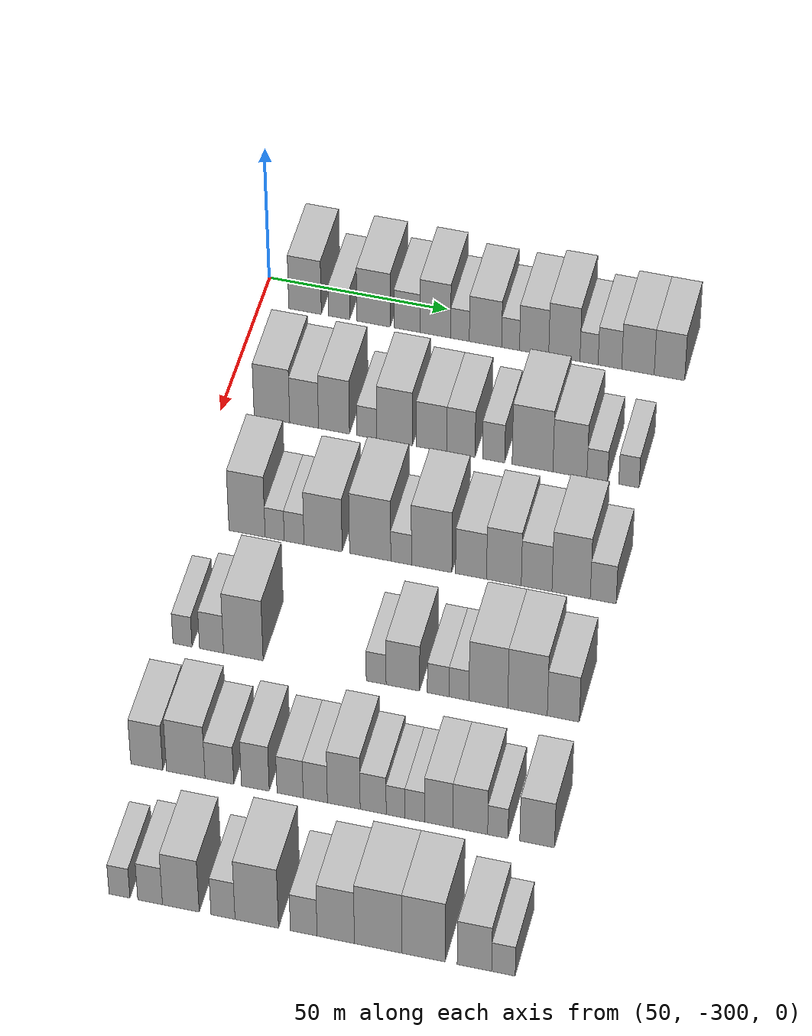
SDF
<sdf version="1.6">
 <world name="default">
  <model name="building_35">
   <static>1</static>
   <pose>50.0000 -287.3122 0 0.000000 0.000000 0.000000</pose>
   <link name="link">
    <pose>0 0 10.50 0 0 0</pose>
    <collision name="collision"><geometry><box><size>20.0000 9.1552 21.0000</size></box></geometry></collision>
    <visual name="visual">
     <cast_shadows>0</cast_shadows>
     <geometry><box><size>20.0000 9.1552 21.0000</size></box></geometry>
     <material>
      <script>
       <uri>model://HANNAS_wall/materials/scripts</uri>
       <uri>model://HANNAS_wall/materials/textures</uri>
       <name>vrc/HANNAS_wall</name>
      </script>
     </material>
    </visual>
   </link>
  </model>
  <model name="building_36">
   <static>1</static>
   <pose>50.0000 -277.7473 0 0.000000 0.000000 0.000000</pose>
   <link name="link">
    <pose>0 0 6.00 0 0 0</pose>
    <collision name="collision"><geometry><box><size>20.0000 5.9745 12.0000</size></box></geometry></collision>
    <visual name="visual">
     <cast_shadows>0</cast_shadows>
     <geometry><box><size>20.0000 5.9745 12.0000</size></box></geometry>
     <material>
      <script>
       <uri>model://HANNAS_wall/materials/scripts</uri>
       <uri>model://HANNAS_wall/materials/textures</uri>
       <name>vrc/HANNAS_wall</name>
      </script>
     </material>
    </visual>
   </link>
  </model>
  <model name="building_37">
   <static>1</static>
   <pose>50.0000 -268.0813 0 0.000000 0.000000 0.000000</pose>
   <link name="link">
    <pose>0 0 10.50 0 0 0</pose>
    <collision name="collision"><geometry><box><size>20.0000 9.3576 21.0000</size></box></geometry></collision>
    <visual name="visual">
     <cast_shadows>0</cast_shadows>
     <geometry><box><size>20.0000 9.3576 21.0000</size></box></geometry>
     <material>
      <script>
       <uri>model://HANNAS_wall/materials/scripts</uri>
       <uri>model://HANNAS_wall/materials/textures</uri>
       <name>vrc/HANNAS_wall</name>
      </script>
     </material>
    </visual>
   </link>
  </model>
  <model name="building_38">
   <static>1</static>
   <pose>50.0000 -258.7891 0 0.000000 0.000000 0.000000</pose>
   <link name="link">
    <pose>0 0 7.50 0 0 0</pose>
    <collision name="collision"><geometry><box><size>20.0000 7.2269 15.0000</size></box></geometry></collision>
    <visual name="visual">
     <cast_shadows>0</cast_shadows>
     <geometry><box><size>20.0000 7.2269 15.0000</size></box></geometry>
     <material>
      <script>
       <uri>model://HANNAS_wall/materials/scripts</uri>
       <uri>model://HANNAS_wall/materials/textures</uri>
       <name>vrc/HANNAS_wall</name>
      </script>
     </material>
    </visual>
   </link>
  </model>
  <model name="building_39">
   <static>1</static>
   <pose>50.0000 -250.8668 0 0.000000 0.000000 0.000000</pose>
   <link name="link">
    <pose>0 0 10.50 0 0 0</pose>
    <collision name="collision"><geometry><box><size>20.0000 8.6175 21.0000</size></box></geometry></collision>
    <visual name="visual">
     <cast_shadows>0</cast_shadows>
     <geometry><box><size>20.0000 8.6175 21.0000</size></box></geometry>
     <material>
      <script>
       <uri>model://HANNAS_wall/materials/scripts</uri>
       <uri>model://HANNAS_wall/materials/textures</uri>
       <name>vrc/HANNAS_wall</name>
      </script>
     </material>
    </visual>
   </link>
  </model>
  <model name="building_40">
   <static>1</static>
   <pose>50.0000 -243.9789 0 0.000000 0.000000 0.000000</pose>
   <link name="link">
    <pose>0 0 6.00 0 0 0</pose>
    <collision name="collision"><geometry><box><size>20.0000 5.1584 12.0000</size></box></geometry></collision>
    <visual name="visual">
     <cast_shadows>0</cast_shadows>
     <geometry><box><size>20.0000 5.1584 12.0000</size></box></geometry>
     <material>
      <script>
       <uri>model://HANNAS_wall/materials/scripts</uri>
       <uri>model://HANNAS_wall/materials/textures</uri>
       <name>vrc/HANNAS_wall</name>
      </script>
     </material>
    </visual>
   </link>
  </model>
  <model name="building_41">
   <static>1</static>
   <pose>50.0000 -236.9094 0 0.000000 0.000000 0.000000</pose>
   <link name="link">
    <pose>0 0 9.00 0 0 0</pose>
    <collision name="collision"><geometry><box><size>20.0000 8.9805 18.0000</size></box></geometry></collision>
    <visual name="visual">
     <cast_shadows>0</cast_shadows>
     <geometry><box><size>20.0000 8.9805 18.0000</size></box></geometry>
     <material>
      <script>
       <uri>model://HANNAS_wall/materials/scripts</uri>
       <uri>model://HANNAS_wall/materials/textures</uri>
       <name>vrc/HANNAS_wall</name>
      </script>
     </material>
    </visual>
   </link>
  </model>
  <model name="building_42">
   <static>1</static>
   <pose>50.0000 -229.9395 0 0.000000 0.000000 0.000000</pose>
   <link name="link">
    <pose>0 0 6.00 0 0 0</pose>
    <collision name="collision"><geometry><box><size>20.0000 4.9593 12.0000</size></box></geometry></collision>
    <visual name="visual">
     <cast_shadows>0</cast_shadows>
     <geometry><box><size>20.0000 4.9593 12.0000</size></box></geometry>
     <material>
      <script>
       <uri>model://HANNAS_wall/materials/scripts</uri>
       <uri>model://HANNAS_wall/materials/textures</uri>
       <name>vrc/HANNAS_wall</name>
      </script>
     </material>
    </visual>
   </link>
  </model>
  <model name="building_43">
   <static>1</static>
   <pose>50.0000 -223.4238 0 0.000000 0.000000 0.000000</pose>
   <link name="link">
    <pose>0 0 9.00 0 0 0</pose>
    <collision name="collision"><geometry><box><size>20.0000 8.0720 18.0000</size></box></geometry></collision>
    <visual name="visual">
     <cast_shadows>0</cast_shadows>
     <geometry><box><size>20.0000 8.0720 18.0000</size></box></geometry>
     <material>
      <script>
       <uri>model://HANNAS_wall/materials/scripts</uri>
       <uri>model://HANNAS_wall/materials/textures</uri>
       <name>vrc/HANNAS_wall</name>
      </script>
     </material>
    </visual>
   </link>
  </model>
  <model name="building_44">
   <static>1</static>
   <pose>50.0000 -215.0772 0 0.000000 0.000000 0.000000</pose>
   <link name="link">
    <pose>0 0 10.50 0 0 0</pose>
    <collision name="collision"><geometry><box><size>20.0000 8.6213 21.0000</size></box></geometry></collision>
    <visual name="visual">
     <cast_shadows>0</cast_shadows>
     <geometry><box><size>20.0000 8.6213 21.0000</size></box></geometry>
     <material>
      <script>
       <uri>model://HANNAS_wall/materials/scripts</uri>
       <uri>model://HANNAS_wall/materials/textures</uri>
       <name>vrc/HANNAS_wall</name>
      </script>
     </material>
    </visual>
   </link>
  </model>
  <model name="building_45">
   <static>1</static>
   <pose>50.0000 -208.2538 0 0.000000 0.000000 0.000000</pose>
   <link name="link">
    <pose>0 0 6.00 0 0 0</pose>
    <collision name="collision"><geometry><box><size>20.0000 5.0254 12.0000</size></box></geometry></collision>
    <visual name="visual">
     <cast_shadows>0</cast_shadows>
     <geometry><box><size>20.0000 5.0254 12.0000</size></box></geometry>
     <material>
      <script>
       <uri>model://HANNAS_wall/materials/scripts</uri>
       <uri>model://HANNAS_wall/materials/textures</uri>
       <name>vrc/HANNAS_wall</name>
      </script>
     </material>
    </visual>
   </link>
  </model>
  <model name="building_46">
   <static>1</static>
   <pose>50.0000 -202.4890 0 0.000000 0.000000 0.000000</pose>
   <link name="link">
    <pose>0 0 7.50 0 0 0</pose>
    <collision name="collision"><geometry><box><size>20.0000 6.5043 15.0000</size></box></geometry></collision>
    <visual name="visual">
     <cast_shadows>0</cast_shadows>
     <geometry><box><size>20.0000 6.5043 15.0000</size></box></geometry>
     <material>
      <script>
       <uri>model://HANNAS_wall/materials/scripts</uri>
       <uri>model://HANNAS_wall/materials/textures</uri>
       <name>vrc/HANNAS_wall</name>
      </script>
     </material>
    </visual>
   </link>
  </model>
  <model name="building_47">
   <static>1</static>
   <pose>50.0000 -194.7680 0 0.000000 0.000000 0.000000</pose>
   <link name="link">
    <pose>0 0 9.00 0 0 0</pose>
    <collision name="collision"><geometry><box><size>20.0000 8.9376 18.0000</size></box></geometry></collision>
    <visual name="visual">
     <cast_shadows>0</cast_shadows>
     <geometry><box><size>20.0000 8.9376 18.0000</size></box></geometry>
     <material>
      <script>
       <uri>model://HANNAS_wall/materials/scripts</uri>
       <uri>model://HANNAS_wall/materials/textures</uri>
       <name>vrc/HANNAS_wall</name>
      </script>
     </material>
    </visual>
   </link>
  </model>
  <model name="building_48">
   <static>1</static>
   <pose>50.0000 -186.1059 0 0.000000 0.000000 0.000000</pose>
   <link name="link">
    <pose>0 0 9.00 0 0 0</pose>
    <collision name="collision"><geometry><box><size>20.0000 8.3866 18.0000</size></box></geometry></collision>
    <visual name="visual">
     <cast_shadows>0</cast_shadows>
     <geometry><box><size>20.0000 8.3866 18.0000</size></box></geometry>
     <material>
      <script>
       <uri>model://HANNAS_wall/materials/scripts</uri>
       <uri>model://HANNAS_wall/materials/textures</uri>
       <name>vrc/HANNAS_wall</name>
      </script>
     </material>
    </visual>
   </link>
  </model>
  <model name="building_166">
   <static>1</static>
   <pose>90.0000 -285.9485 0 0.000000 0.000000 0.000000</pose>
   <link name="link">
    <pose>0 0 10.50 0 0 0</pose>
    <collision name="collision"><geometry><box><size>20.0000 9.8351 21.0000</size></box></geometry></collision>
    <visual name="visual">
     <cast_shadows>0</cast_shadows>
     <geometry><box><size>20.0000 9.8351 21.0000</size></box></geometry>
     <material>
      <script>
       <uri>model://HANNAS_wall/materials/scripts</uri>
       <uri>model://HANNAS_wall/materials/textures</uri>
       <name>vrc/HANNAS_wall</name>
      </script>
     </material>
    </visual>
   </link>
  </model>
  <model name="building_167">
   <static>1</static>
   <pose>90.0000 -277.0634 0 0.000000 0.000000 0.000000</pose>
   <link name="link">
    <pose>0 0 9.00 0 0 0</pose>
    <collision name="collision"><geometry><box><size>20.0000 7.9351 18.0000</size></box></geometry></collision>
    <visual name="visual">
     <cast_shadows>0</cast_shadows>
     <geometry><box><size>20.0000 7.9351 18.0000</size></box></geometry>
     <material>
      <script>
       <uri>model://HANNAS_wall/materials/scripts</uri>
       <uri>model://HANNAS_wall/materials/textures</uri>
       <name>vrc/HANNAS_wall</name>
      </script>
     </material>
    </visual>
   </link>
  </model>
  <model name="building_168">
   <static>1</static>
   <pose>90.0000 -268.8476 0 0.000000 0.000000 0.000000</pose>
   <link name="link">
    <pose>0 0 10.50 0 0 0</pose>
    <collision name="collision"><geometry><box><size>20.0000 8.4964 21.0000</size></box></geometry></collision>
    <visual name="visual">
     <cast_shadows>0</cast_shadows>
     <geometry><box><size>20.0000 8.4964 21.0000</size></box></geometry>
     <material>
      <script>
       <uri>model://HANNAS_wall/materials/scripts</uri>
       <uri>model://HANNAS_wall/materials/textures</uri>
       <name>vrc/HANNAS_wall</name>
      </script>
     </material>
    </visual>
   </link>
  </model>
  <model name="building_169">
   <static>1</static>
   <pose>90.0000 -259.8656 0 0.000000 0.000000 0.000000</pose>
   <link name="link">
    <pose>0 0 6.00 0 0 0</pose>
    <collision name="collision"><geometry><box><size>20.0000 5.4676 12.0000</size></box></geometry></collision>
    <visual name="visual">
     <cast_shadows>0</cast_shadows>
     <geometry><box><size>20.0000 5.4676 12.0000</size></box></geometry>
     <material>
      <script>
       <uri>model://HANNAS_wall/materials/scripts</uri>
       <uri>model://HANNAS_wall/materials/textures</uri>
       <name>vrc/HANNAS_wall</name>
      </script>
     </material>
    </visual>
   </link>
  </model>
  <model name="building_170">
   <static>1</static>
   <pose>90.0000 -252.2213 0 0.000000 0.000000 0.000000</pose>
   <link name="link">
    <pose>0 0 10.50 0 0 0</pose>
    <collision name="collision"><geometry><box><size>20.0000 9.8212 21.0000</size></box></geometry></collision>
    <visual name="visual">
     <cast_shadows>0</cast_shadows>
     <geometry><box><size>20.0000 9.8212 21.0000</size></box></geometry>
     <material>
      <script>
       <uri>model://HANNAS_wall/materials/scripts</uri>
       <uri>model://HANNAS_wall/materials/textures</uri>
       <name>vrc/HANNAS_wall</name>
      </script>
     </material>
    </visual>
   </link>
  </model>
  <model name="building_171">
   <static>1</static>
   <pose>90.0000 -242.1165 0 0.000000 0.000000 0.000000</pose>
   <link name="link">
    <pose>0 0 9.00 0 0 0</pose>
    <collision name="collision"><geometry><box><size>20.0000 8.3883 18.0000</size></box></geometry></collision>
    <visual name="visual">
     <cast_shadows>0</cast_shadows>
     <geometry><box><size>20.0000 8.3883 18.0000</size></box></geometry>
     <material>
      <script>
       <uri>model://HANNAS_wall/materials/scripts</uri>
       <uri>model://HANNAS_wall/materials/textures</uri>
       <name>vrc/HANNAS_wall</name>
      </script>
     </material>
    </visual>
   </link>
  </model>
  <model name="building_172">
   <static>1</static>
   <pose>90.0000 -234.0797 0 0.000000 0.000000 0.000000</pose>
   <link name="link">
    <pose>0 0 9.00 0 0 0</pose>
    <collision name="collision"><geometry><box><size>20.0000 7.6854 18.0000</size></box></geometry></collision>
    <visual name="visual">
     <cast_shadows>0</cast_shadows>
     <geometry><box><size>20.0000 7.6854 18.0000</size></box></geometry>
     <material>
      <script>
       <uri>model://HANNAS_wall/materials/scripts</uri>
       <uri>model://HANNAS_wall/materials/textures</uri>
       <name>vrc/HANNAS_wall</name>
      </script>
     </material>
    </visual>
   </link>
  </model>
  <model name="building_173">
   <static>1</static>
   <pose>90.0000 -225.2042 0 0.000000 0.000000 0.000000</pose>
   <link name="link">
    <pose>0 0 7.50 0 0 0</pose>
    <collision name="collision"><geometry><box><size>20.0000 6.0655 15.0000</size></box></geometry></collision>
    <visual name="visual">
     <cast_shadows>0</cast_shadows>
     <geometry><box><size>20.0000 6.0655 15.0000</size></box></geometry>
     <material>
      <script>
       <uri>model://HANNAS_wall/materials/scripts</uri>
       <uri>model://HANNAS_wall/materials/textures</uri>
       <name>vrc/HANNAS_wall</name>
      </script>
     </material>
    </visual>
   </link>
  </model>
  <model name="building_174">
   <static>1</static>
   <pose>90.0000 -214.6395 0 0.000000 0.000000 0.000000</pose>
   <link name="link">
    <pose>0 0 12.00 0 0 0</pose>
    <collision name="collision"><geometry><box><size>20.0000 11.0639 24.0000</size></box></geometry></collision>
    <visual name="visual">
     <cast_shadows>0</cast_shadows>
     <geometry><box><size>20.0000 11.0639 24.0000</size></box></geometry>
     <material>
      <script>
       <uri>model://HANNAS_wall/materials/scripts</uri>
       <uri>model://HANNAS_wall/materials/textures</uri>
       <name>vrc/HANNAS_wall</name>
      </script>
     </material>
    </visual>
   </link>
  </model>
  <model name="building_175">
   <static>1</static>
   <pose>90.0000 -204.4975 0 0.000000 0.000000 0.000000</pose>
   <link name="link">
    <pose>0 0 10.50 0 0 0</pose>
    <collision name="collision"><geometry><box><size>20.0000 9.2202 21.0000</size></box></geometry></collision>
    <visual name="visual">
     <cast_shadows>0</cast_shadows>
     <geometry><box><size>20.0000 9.2202 21.0000</size></box></geometry>
     <material>
      <script>
       <uri>model://HANNAS_wall/materials/scripts</uri>
       <uri>model://HANNAS_wall/materials/textures</uri>
       <name>vrc/HANNAS_wall</name>
      </script>
     </material>
    </visual>
   </link>
  </model>
  <model name="building_176">
   <static>1</static>
   <pose>90.0000 -197.0859 0 0.000000 0.000000 0.000000</pose>
   <link name="link">
    <pose>0 0 6.00 0 0 0</pose>
    <collision name="collision"><geometry><box><size>20.0000 5.6028 12.0000</size></box></geometry></collision>
    <visual name="visual">
     <cast_shadows>0</cast_shadows>
     <geometry><box><size>20.0000 5.6028 12.0000</size></box></geometry>
     <material>
      <script>
       <uri>model://HANNAS_wall/materials/scripts</uri>
       <uri>model://HANNAS_wall/materials/textures</uri>
       <name>vrc/HANNAS_wall</name>
      </script>
     </material>
    </visual>
   </link>
  </model>
  <model name="building_177">
   <static>1</static>
   <pose>90.0000 -188.5389 0 0.000000 0.000000 0.000000</pose>
   <link name="link">
    <pose>0 0 6.00 0 0 0</pose>
    <collision name="collision"><geometry><box><size>20.0000 5.4913 12.0000</size></box></geometry></collision>
    <visual name="visual">
     <cast_shadows>0</cast_shadows>
     <geometry><box><size>20.0000 5.4913 12.0000</size></box></geometry>
     <material>
      <script>
       <uri>model://HANNAS_wall/materials/scripts</uri>
       <uri>model://HANNAS_wall/materials/textures</uri>
       <name>vrc/HANNAS_wall</name>
      </script>
     </material>
    </visual>
   </link>
  </model>
  <model name="building_301">
   <static>1</static>
   <pose>130.0000 -281.9947 0 0.000000 0.000000 0.000000</pose>
   <link name="link">
    <pose>0 0 12.00 0 0 0</pose>
    <collision name="collision"><geometry><box><size>20.0000 9.7970 24.0000</size></box></geometry></collision>
    <visual name="visual">
     <cast_shadows>0</cast_shadows>
     <geometry><box><size>20.0000 9.7970 24.0000</size></box></geometry>
     <material>
      <script>
       <uri>model://HANNAS_wall/materials/scripts</uri>
       <uri>model://HANNAS_wall/materials/textures</uri>
       <name>vrc/HANNAS_wall</name>
      </script>
     </material>
    </visual>
   </link>
  </model>
  <model name="building_302">
   <static>1</static>
   <pose>130.0000 -274.5153 0 0.000000 0.000000 0.000000</pose>
   <link name="link">
    <pose>0 0 6.00 0 0 0</pose>
    <collision name="collision"><geometry><box><size>20.0000 5.1618 12.0000</size></box></geometry></collision>
    <visual name="visual">
     <cast_shadows>0</cast_shadows>
     <geometry><box><size>20.0000 5.1618 12.0000</size></box></geometry>
     <material>
      <script>
       <uri>model://HANNAS_wall/materials/scripts</uri>
       <uri>model://HANNAS_wall/materials/textures</uri>
       <name>vrc/HANNAS_wall</name>
      </script>
     </material>
    </visual>
   </link>
  </model>
  <model name="building_303">
   <static>1</static>
   <pose>130.0000 -269.2646 0 0.000000 0.000000 0.000000</pose>
   <link name="link">
    <pose>0 0 6.00 0 0 0</pose>
    <collision name="collision"><geometry><box><size>20.0000 5.3396 12.0000</size></box></geometry></collision>
    <visual name="visual">
     <cast_shadows>0</cast_shadows>
     <geometry><box><size>20.0000 5.3396 12.0000</size></box></geometry>
     <material>
      <script>
       <uri>model://HANNAS_wall/materials/scripts</uri>
       <uri>model://HANNAS_wall/materials/textures</uri>
       <name>vrc/HANNAS_wall</name>
      </script>
     </material>
    </visual>
   </link>
  </model>
  <model name="building_304">
   <static>1</static>
   <pose>130.0000 -261.4586 0 0.000000 0.000000 0.000000</pose>
   <link name="link">
    <pose>0 0 10.50 0 0 0</pose>
    <collision name="collision"><geometry><box><size>20.0000 10.2723 21.0000</size></box></geometry></collision>
    <visual name="visual">
     <cast_shadows>0</cast_shadows>
     <geometry><box><size>20.0000 10.2723 21.0000</size></box></geometry>
     <material>
      <script>
       <uri>model://HANNAS_wall/materials/scripts</uri>
       <uri>model://HANNAS_wall/materials/textures</uri>
       <name>vrc/HANNAS_wall</name>
      </script>
     </material>
    </visual>
   </link>
  </model>
  <model name="building_305">
   <static>1</static>
   <pose>130.0000 -248.7860 0 0.000000 0.000000 0.000000</pose>
   <link name="link">
    <pose>0 0 12.00 0 0 0</pose>
    <collision name="collision"><geometry><box><size>20.0000 11.0729 24.0000</size></box></geometry></collision>
    <visual name="visual">
     <cast_shadows>0</cast_shadows>
     <geometry><box><size>20.0000 11.0729 24.0000</size></box></geometry>
     <material>
      <script>
       <uri>model://HANNAS_wall/materials/scripts</uri>
       <uri>model://HANNAS_wall/materials/textures</uri>
       <name>vrc/HANNAS_wall</name>
      </script>
     </material>
    </visual>
   </link>
  </model>
  <model name="building_306">
   <static>1</static>
   <pose>130.0000 -240.4891 0 0.000000 0.000000 0.000000</pose>
   <link name="link">
    <pose>0 0 6.00 0 0 0</pose>
    <collision name="collision"><geometry><box><size>20.0000 5.5208 12.0000</size></box></geometry></collision>
    <visual name="visual">
     <cast_shadows>0</cast_shadows>
     <geometry><box><size>20.0000 5.5208 12.0000</size></box></geometry>
     <material>
      <script>
       <uri>model://HANNAS_wall/materials/scripts</uri>
       <uri>model://HANNAS_wall/materials/textures</uri>
       <name>vrc/HANNAS_wall</name>
      </script>
     </material>
    </visual>
   </link>
  </model>
  <model name="building_307">
   <static>1</static>
   <pose>130.0000 -232.3187 0 0.000000 0.000000 0.000000</pose>
   <link name="link">
    <pose>0 0 12.00 0 0 0</pose>
    <collision name="collision"><geometry><box><size>20.0000 10.8200 24.0000</size></box></geometry></collision>
    <visual name="visual">
     <cast_shadows>0</cast_shadows>
     <geometry><box><size>20.0000 10.8200 24.0000</size></box></geometry>
     <material>
      <script>
       <uri>model://HANNAS_wall/materials/scripts</uri>
       <uri>model://HANNAS_wall/materials/textures</uri>
       <name>vrc/HANNAS_wall</name>
      </script>
     </material>
    </visual>
   </link>
  </model>
  <model name="building_308">
   <static>1</static>
   <pose>130.0000 -221.7755 0 0.000000 0.000000 0.000000</pose>
   <link name="link">
    <pose>0 0 9.00 0 0 0</pose>
    <collision name="collision"><geometry><box><size>20.0000 8.2665 18.0000</size></box></geometry></collision>
    <visual name="visual">
     <cast_shadows>0</cast_shadows>
     <geometry><box><size>20.0000 8.2665 18.0000</size></box></geometry>
     <material>
      <script>
       <uri>model://HANNAS_wall/materials/scripts</uri>
       <uri>model://HANNAS_wall/materials/textures</uri>
       <name>vrc/HANNAS_wall</name>
      </script>
     </material>
    </visual>
   </link>
  </model>
  <model name="building_309">
   <static>1</static>
   <pose>130.0000 -213.0189 0 0.000000 0.000000 0.000000</pose>
   <link name="link">
    <pose>0 0 10.50 0 0 0</pose>
    <collision name="collision"><geometry><box><size>20.0000 9.2467 21.0000</size></box></geometry></collision>
    <visual name="visual">
     <cast_shadows>0</cast_shadows>
     <geometry><box><size>20.0000 9.2467 21.0000</size></box></geometry>
     <material>
      <script>
       <uri>model://HANNAS_wall/materials/scripts</uri>
       <uri>model://HANNAS_wall/materials/textures</uri>
       <name>vrc/HANNAS_wall</name>
      </script>
     </material>
    </visual>
   </link>
  </model>
  <model name="building_310">
   <static>1</static>
   <pose>130.0000 -204.3142 0 0.000000 0.000000 0.000000</pose>
   <link name="link">
    <pose>0 0 9.00 0 0 0</pose>
    <collision name="collision"><geometry><box><size>20.0000 8.1626 18.0000</size></box></geometry></collision>
    <visual name="visual">
     <cast_shadows>0</cast_shadows>
     <geometry><box><size>20.0000 8.1626 18.0000</size></box></geometry>
     <material>
      <script>
       <uri>model://HANNAS_wall/materials/scripts</uri>
       <uri>model://HANNAS_wall/materials/textures</uri>
       <name>vrc/HANNAS_wall</name>
      </script>
     </material>
    </visual>
   </link>
  </model>
  <model name="building_311">
   <static>1</static>
   <pose>130.0000 -195.1590 0 0.000000 0.000000 0.000000</pose>
   <link name="link">
    <pose>0 0 12.00 0 0 0</pose>
    <collision name="collision"><geometry><box><size>20.0000 10.1478 24.0000</size></box></geometry></collision>
    <visual name="visual">
     <cast_shadows>0</cast_shadows>
     <geometry><box><size>20.0000 10.1478 24.0000</size></box></geometry>
     <material>
      <script>
       <uri>model://HANNAS_wall/materials/scripts</uri>
       <uri>model://HANNAS_wall/materials/textures</uri>
       <name>vrc/HANNAS_wall</name>
      </script>
     </material>
    </visual>
   </link>
  </model>
  <model name="building_312">
   <static>1</static>
   <pose>130.0000 -186.6474 0 0.000000 0.000000 0.000000</pose>
   <link name="link">
    <pose>0 0 7.50 0 0 0</pose>
    <collision name="collision"><geometry><box><size>20.0000 6.8753 15.0000</size></box></geometry></collision>
    <visual name="visual">
     <cast_shadows>0</cast_shadows>
     <geometry><box><size>20.0000 6.8753 15.0000</size></box></geometry>
     <material>
      <script>
       <uri>model://HANNAS_wall/materials/scripts</uri>
       <uri>model://HANNAS_wall/materials/textures</uri>
       <name>vrc/HANNAS_wall</name>
      </script>
     </material>
    </visual>
   </link>
  </model>
  <model name="building_437">
   <static>1</static>
   <pose>170.0000 -288.3308 0 0.000000 0.000000 0.000000</pose>
   <link name="link">
    <pose>0 0 6.00 0 0 0</pose>
    <collision name="collision"><geometry><box><size>20.0000 5.0776 12.0000</size></box></geometry></collision>
    <visual name="visual">
     <cast_shadows>0</cast_shadows>
     <geometry><box><size>20.0000 5.0776 12.0000</size></box></geometry>
     <material>
      <script>
       <uri>model://HANNAS_wall/materials/scripts</uri>
       <uri>model://HANNAS_wall/materials/textures</uri>
       <name>vrc/HANNAS_wall</name>
      </script>
     </material>
    </visual>
   </link>
  </model>
  <model name="building_438">
   <static>1</static>
   <pose>170.0000 -280.5955 0 0.000000 0.000000 0.000000</pose>
   <link name="link">
    <pose>0 0 7.50 0 0 0</pose>
    <collision name="collision"><geometry><box><size>20.0000 6.3930 15.0000</size></box></geometry></collision>
    <visual name="visual">
     <cast_shadows>0</cast_shadows>
     <geometry><box><size>20.0000 6.3930 15.0000</size></box></geometry>
     <material>
      <script>
       <uri>model://HANNAS_wall/materials/scripts</uri>
       <uri>model://HANNAS_wall/materials/textures</uri>
       <name>vrc/HANNAS_wall</name>
      </script>
     </material>
    </visual>
   </link>
  </model>
  <model name="building_439">
   <static>1</static>
   <pose>170.0000 -272.1510 0 0.000000 0.000000 0.000000</pose>
   <link name="link">
    <pose>0 0 12.00 0 0 0</pose>
    <collision name="collision"><geometry><box><size>20.0000 10.4959 24.0000</size></box></geometry></collision>
    <visual name="visual">
     <cast_shadows>0</cast_shadows>
     <geometry><box><size>20.0000 10.4959 24.0000</size></box></geometry>
     <material>
      <script>
       <uri>model://HANNAS_wall/materials/scripts</uri>
       <uri>model://HANNAS_wall/materials/textures</uri>
       <name>vrc/HANNAS_wall</name>
      </script>
     </material>
    </visual>
   </link>
  </model>
  <model name="building_440">
   <static>1</static>
   <pose>170.0000 -237.0734 0 0.000000 0.000000 0.000000</pose>
   <link name="link">
    <pose>0 0 6.00 0 0 0</pose>
    <collision name="collision"><geometry><box><size>20.0000 5.2198 12.0000</size></box></geometry></collision>
    <visual name="visual">
     <cast_shadows>0</cast_shadows>
     <geometry><box><size>20.0000 5.2198 12.0000</size></box></geometry>
     <material>
      <script>
       <uri>model://HANNAS_wall/materials/scripts</uri>
       <uri>model://HANNAS_wall/materials/textures</uri>
       <name>vrc/HANNAS_wall</name>
      </script>
     </material>
    </visual>
   </link>
  </model>
  <model name="building_441">
   <static>1</static>
   <pose>170.0000 -230.0509 0 0.000000 0.000000 0.000000</pose>
   <link name="link">
    <pose>0 0 9.00 0 0 0</pose>
    <collision name="collision"><geometry><box><size>20.0000 8.8251 18.0000</size></box></geometry></collision>
    <visual name="visual">
     <cast_shadows>0</cast_shadows>
     <geometry><box><size>20.0000 8.8251 18.0000</size></box></geometry>
     <material>
      <script>
       <uri>model://HANNAS_wall/materials/scripts</uri>
       <uri>model://HANNAS_wall/materials/textures</uri>
       <name>vrc/HANNAS_wall</name>
      </script>
     </material>
    </visual>
   </link>
  </model>
  <model name="building_442">
   <static>1</static>
   <pose>170.0000 -220.7889 0 0.000000 0.000000 0.000000</pose>
   <link name="link">
    <pose>0 0 6.00 0 0 0</pose>
    <collision name="collision"><geometry><box><size>20.0000 5.6989 12.0000</size></box></geometry></collision>
    <visual name="visual">
     <cast_shadows>0</cast_shadows>
     <geometry><box><size>20.0000 5.6989 12.0000</size></box></geometry>
     <material>
      <script>
       <uri>model://HANNAS_wall/materials/scripts</uri>
       <uri>model://HANNAS_wall/materials/textures</uri>
       <name>vrc/HANNAS_wall</name>
      </script>
     </material>
    </visual>
   </link>
  </model>
  <model name="building_443">
   <static>1</static>
   <pose>170.0000 -215.3450 0 0.000000 0.000000 0.000000</pose>
   <link name="link">
    <pose>0 0 6.00 0 0 0</pose>
    <collision name="collision"><geometry><box><size>20.0000 5.1889 12.0000</size></box></geometry></collision>
    <visual name="visual">
     <cast_shadows>0</cast_shadows>
     <geometry><box><size>20.0000 5.1889 12.0000</size></box></geometry>
     <material>
      <script>
       <uri>model://HANNAS_wall/materials/scripts</uri>
       <uri>model://HANNAS_wall/materials/textures</uri>
       <name>vrc/HANNAS_wall</name>
      </script>
     </material>
    </visual>
   </link>
  </model>
  <model name="building_444">
   <static>1</static>
   <pose>170.0000 -207.6911 0 0.000000 0.000000 0.000000</pose>
   <link name="link">
    <pose>0 0 12.00 0 0 0</pose>
    <collision name="collision"><geometry><box><size>20.0000 10.1190 24.0000</size></box></geometry></collision>
    <visual name="visual">
     <cast_shadows>0</cast_shadows>
     <geometry><box><size>20.0000 10.1190 24.0000</size></box></geometry>
     <material>
      <script>
       <uri>model://HANNAS_wall/materials/scripts</uri>
       <uri>model://HANNAS_wall/materials/textures</uri>
       <name>vrc/HANNAS_wall</name>
      </script>
     </material>
    </visual>
   </link>
  </model>
  <model name="building_445">
   <static>1</static>
   <pose>170.0000 -197.4782 0 0.000000 0.000000 0.000000</pose>
   <link name="link">
    <pose>0 0 12.00 0 0 0</pose>
    <collision name="collision"><geometry><box><size>20.0000 10.3067 24.0000</size></box></geometry></collision>
    <visual name="visual">
     <cast_shadows>0</cast_shadows>
     <geometry><box><size>20.0000 10.3067 24.0000</size></box></geometry>
     <material>
      <script>
       <uri>model://HANNAS_wall/materials/scripts</uri>
       <uri>model://HANNAS_wall/materials/textures</uri>
       <name>vrc/HANNAS_wall</name>
      </script>
     </material>
    </visual>
   </link>
  </model>
  <model name="building_446">
   <static>1</static>
   <pose>170.0000 -188.1605 0 0.000000 0.000000 0.000000</pose>
   <link name="link">
    <pose>0 0 9.00 0 0 0</pose>
    <collision name="collision"><geometry><box><size>20.0000 8.3287 18.0000</size></box></geometry></collision>
    <visual name="visual">
     <cast_shadows>0</cast_shadows>
     <geometry><box><size>20.0000 8.3287 18.0000</size></box></geometry>
     <material>
      <script>
       <uri>model://HANNAS_wall/materials/scripts</uri>
       <uri>model://HANNAS_wall/materials/textures</uri>
       <name>vrc/HANNAS_wall</name>
      </script>
     </material>
    </visual>
   </link>
  </model>
  <model name="building_567">
   <static>1</static>
   <pose>210.0000 -286.4595 0 0.000000 0.000000 0.000000</pose>
   <link name="link">
    <pose>0 0 9.00 0 0 0</pose>
    <collision name="collision"><geometry><box><size>20.0000 8.3181 18.0000</size></box></geometry></collision>
    <visual name="visual">
     <cast_shadows>0</cast_shadows>
     <geometry><box><size>20.0000 8.3181 18.0000</size></box></geometry>
     <material>
      <script>
       <uri>model://HANNAS_wall/materials/scripts</uri>
       <uri>model://HANNAS_wall/materials/textures</uri>
       <name>vrc/HANNAS_wall</name>
      </script>
     </material>
    </visual>
   </link>
  </model>
  <model name="building_568">
   <static>1</static>
   <pose>210.0000 -276.2901 0 0.000000 0.000000 0.000000</pose>
   <link name="link">
    <pose>0 0 10.50 0 0 0</pose>
    <collision name="collision"><geometry><box><size>20.0000 10.0206 21.0000</size></box></geometry></collision>
    <visual name="visual">
     <cast_shadows>0</cast_shadows>
     <geometry><box><size>20.0000 10.0206 21.0000</size></box></geometry>
     <material>
      <script>
       <uri>model://HANNAS_wall/materials/scripts</uri>
       <uri>model://HANNAS_wall/materials/textures</uri>
       <name>vrc/HANNAS_wall</name>
      </script>
     </material>
    </visual>
   </link>
  </model>
  <model name="building_569">
   <static>1</static>
   <pose>210.0000 -267.5390 0 0.000000 0.000000 0.000000</pose>
   <link name="link">
    <pose>0 0 7.50 0 0 0</pose>
    <collision name="collision"><geometry><box><size>20.0000 7.4818 15.0000</size></box></geometry></collision>
    <visual name="visual">
     <cast_shadows>0</cast_shadows>
     <geometry><box><size>20.0000 7.4818 15.0000</size></box></geometry>
     <material>
      <script>
       <uri>model://HANNAS_wall/materials/scripts</uri>
       <uri>model://HANNAS_wall/materials/textures</uri>
       <name>vrc/HANNAS_wall</name>
      </script>
     </material>
    </visual>
   </link>
  </model>
  <model name="building_570">
   <static>1</static>
   <pose>210.0000 -258.1938 0 0.000000 0.000000 0.000000</pose>
   <link name="link">
    <pose>0 0 9.00 0 0 0</pose>
    <collision name="collision"><geometry><box><size>20.0000 7.2085 18.0000</size></box></geometry></collision>
    <visual name="visual">
     <cast_shadows>0</cast_shadows>
     <geometry><box><size>20.0000 7.2085 18.0000</size></box></geometry>
     <material>
      <script>
       <uri>model://HANNAS_wall/materials/scripts</uri>
       <uri>model://HANNAS_wall/materials/textures</uri>
       <name>vrc/HANNAS_wall</name>
      </script>
     </material>
    </visual>
   </link>
  </model>
  <model name="building_571">
   <static>1</static>
   <pose>210.0000 -249.1947 0 0.000000 0.000000 0.000000</pose>
   <link name="link">
    <pose>0 0 7.50 0 0 0</pose>
    <collision name="collision"><geometry><box><size>20.0000 6.7899 15.0000</size></box></geometry></collision>
    <visual name="visual">
     <cast_shadows>0</cast_shadows>
     <geometry><box><size>20.0000 6.7899 15.0000</size></box></geometry>
     <material>
      <script>
       <uri>model://HANNAS_wall/materials/scripts</uri>
       <uri>model://HANNAS_wall/materials/textures</uri>
       <name>vrc/HANNAS_wall</name>
      </script>
     </material>
    </visual>
   </link>
  </model>
  <model name="building_572">
   <static>1</static>
   <pose>210.0000 -242.6757 0 0.000000 0.000000 0.000000</pose>
   <link name="link">
    <pose>0 0 7.50 0 0 0</pose>
    <collision name="collision"><geometry><box><size>20.0000 6.2480 15.0000</size></box></geometry></collision>
    <visual name="visual">
     <cast_shadows>0</cast_shadows>
     <geometry><box><size>20.0000 6.2480 15.0000</size></box></geometry>
     <material>
      <script>
       <uri>model://HANNAS_wall/materials/scripts</uri>
       <uri>model://HANNAS_wall/materials/textures</uri>
       <name>vrc/HANNAS_wall</name>
      </script>
     </material>
    </visual>
   </link>
  </model>
  <model name="building_573">
   <static>1</static>
   <pose>210.0000 -235.3243 0 0.000000 0.000000 0.000000</pose>
   <link name="link">
    <pose>0 0 10.50 0 0 0</pose>
    <collision name="collision"><geometry><box><size>20.0000 8.4548 21.0000</size></box></geometry></collision>
    <visual name="visual">
     <cast_shadows>0</cast_shadows>
     <geometry><box><size>20.0000 8.4548 21.0000</size></box></geometry>
     <material>
      <script>
       <uri>model://HANNAS_wall/materials/scripts</uri>
       <uri>model://HANNAS_wall/materials/textures</uri>
       <name>vrc/HANNAS_wall</name>
      </script>
     </material>
    </visual>
   </link>
  </model>
  <model name="building_574">
   <static>1</static>
   <pose>210.0000 -227.7481 0 0.000000 0.000000 0.000000</pose>
   <link name="link">
    <pose>0 0 7.50 0 0 0</pose>
    <collision name="collision"><geometry><box><size>20.0000 6.6974 15.0000</size></box></geometry></collision>
    <visual name="visual">
     <cast_shadows>0</cast_shadows>
     <geometry><box><size>20.0000 6.6974 15.0000</size></box></geometry>
     <material>
      <script>
       <uri>model://HANNAS_wall/materials/scripts</uri>
       <uri>model://HANNAS_wall/materials/textures</uri>
       <name>vrc/HANNAS_wall</name>
      </script>
     </material>
    </visual>
   </link>
  </model>
  <model name="building_575">
   <static>1</static>
   <pose>210.0000 -221.9831 0 0.000000 0.000000 0.000000</pose>
   <link name="link">
    <pose>0 0 6.00 0 0 0</pose>
    <collision name="collision"><geometry><box><size>20.0000 4.8327 12.0000</size></box></geometry></collision>
    <visual name="visual">
     <cast_shadows>0</cast_shadows>
     <geometry><box><size>20.0000 4.8327 12.0000</size></box></geometry>
     <material>
      <script>
       <uri>model://HANNAS_wall/materials/scripts</uri>
       <uri>model://HANNAS_wall/materials/textures</uri>
       <name>vrc/HANNAS_wall</name>
      </script>
     </material>
    </visual>
   </link>
  </model>
  <model name="building_576">
   <static>1</static>
   <pose>210.0000 -217.0652 0 0.000000 0.000000 0.000000</pose>
   <link name="link">
    <pose>0 0 6.00 0 0 0</pose>
    <collision name="collision"><geometry><box><size>20.0000 5.0032 12.0000</size></box></geometry></collision>
    <visual name="visual">
     <cast_shadows>0</cast_shadows>
     <geometry><box><size>20.0000 5.0032 12.0000</size></box></geometry>
     <material>
      <script>
       <uri>model://HANNAS_wall/materials/scripts</uri>
       <uri>model://HANNAS_wall/materials/textures</uri>
       <name>vrc/HANNAS_wall</name>
      </script>
     </material>
    </visual>
   </link>
  </model>
  <model name="building_577">
   <static>1</static>
   <pose>210.0000 -210.9355 0 0.000000 0.000000 0.000000</pose>
   <link name="link">
    <pose>0 0 9.00 0 0 0</pose>
    <collision name="collision"><geometry><box><size>20.0000 7.2561 18.0000</size></box></geometry></collision>
    <visual name="visual">
     <cast_shadows>0</cast_shadows>
     <geometry><box><size>20.0000 7.2561 18.0000</size></box></geometry>
     <material>
      <script>
       <uri>model://HANNAS_wall/materials/scripts</uri>
       <uri>model://HANNAS_wall/materials/textures</uri>
       <name>vrc/HANNAS_wall</name>
      </script>
     </material>
    </visual>
   </link>
  </model>
  <model name="building_578">
   <static>1</static>
   <pose>210.0000 -202.8484 0 0.000000 0.000000 0.000000</pose>
   <link name="link">
    <pose>0 0 9.00 0 0 0</pose>
    <collision name="collision"><geometry><box><size>20.0000 8.9183 18.0000</size></box></geometry></collision>
    <visual name="visual">
     <cast_shadows>0</cast_shadows>
     <geometry><box><size>20.0000 8.9183 18.0000</size></box></geometry>
     <material>
      <script>
       <uri>model://HANNAS_wall/materials/scripts</uri>
       <uri>model://HANNAS_wall/materials/textures</uri>
       <name>vrc/HANNAS_wall</name>
      </script>
     </material>
    </visual>
   </link>
  </model>
  <model name="building_579">
   <static>1</static>
   <pose>210.0000 -195.7891 0 0.000000 0.000000 0.000000</pose>
   <link name="link">
    <pose>0 0 6.00 0 0 0</pose>
    <collision name="collision"><geometry><box><size>20.0000 5.2003 12.0000</size></box></geometry></collision>
    <visual name="visual">
     <cast_shadows>0</cast_shadows>
     <geometry><box><size>20.0000 5.2003 12.0000</size></box></geometry>
     <material>
      <script>
       <uri>model://HANNAS_wall/materials/scripts</uri>
       <uri>model://HANNAS_wall/materials/textures</uri>
       <name>vrc/HANNAS_wall</name>
      </script>
     </material>
    </visual>
   </link>
  </model>
  <model name="building_580">
   <static>1</static>
   <pose>210.0000 -185.7619 0 0.000000 0.000000 0.000000</pose>
   <link name="link">
    <pose>0 0 9.00 0 0 0</pose>
    <collision name="collision"><geometry><box><size>20.0000 8.8541 18.0000</size></box></geometry></collision>
    <visual name="visual">
     <cast_shadows>0</cast_shadows>
     <geometry><box><size>20.0000 8.8541 18.0000</size></box></geometry>
     <material>
      <script>
       <uri>model://HANNAS_wall/materials/scripts</uri>
       <uri>model://HANNAS_wall/materials/textures</uri>
       <name>vrc/HANNAS_wall</name>
      </script>
     </material>
    </visual>
   </link>
  </model>
  <model name="building_711">
   <static>1</static>
   <pose>250.0000 -282.0540 0 0.000000 0.000000 0.000000</pose>
   <link name="link">
    <pose>0 0 6.00 0 0 0</pose>
    <collision name="collision"><geometry><box><size>20.0000 5.3357 12.0000</size></box></geometry></collision>
    <visual name="visual">
     <cast_shadows>0</cast_shadows>
     <geometry><box><size>20.0000 5.3357 12.0000</size></box></geometry>
     <material>
      <script>
       <uri>model://HANNAS_wall/materials/scripts</uri>
       <uri>model://HANNAS_wall/materials/textures</uri>
       <name>vrc/HANNAS_wall</name>
      </script>
     </material>
    </visual>
   </link>
  </model>
  <model name="building_712">
   <static>1</static>
   <pose>250.0000 -274.2279 0 0.000000 0.000000 0.000000</pose>
   <link name="link">
    <pose>0 0 7.50 0 0 0</pose>
    <collision name="collision"><geometry><box><size>20.0000 6.3165 15.0000</size></box></geometry></collision>
    <visual name="visual">
     <cast_shadows>0</cast_shadows>
     <geometry><box><size>20.0000 6.3165 15.0000</size></box></geometry>
     <material>
      <script>
       <uri>model://HANNAS_wall/materials/scripts</uri>
       <uri>model://HANNAS_wall/materials/textures</uri>
       <name>vrc/HANNAS_wall</name>
      </script>
     </material>
    </visual>
   </link>
  </model>
  <model name="building_713">
   <static>1</static>
   <pose>250.0000 -266.3852 0 0.000000 0.000000 0.000000</pose>
   <link name="link">
    <pose>0 0 10.50 0 0 0</pose>
    <collision name="collision"><geometry><box><size>20.0000 9.3689 21.0000</size></box></geometry></collision>
    <visual name="visual">
     <cast_shadows>0</cast_shadows>
     <geometry><box><size>20.0000 9.3689 21.0000</size></box></geometry>
     <material>
      <script>
       <uri>model://HANNAS_wall/materials/scripts</uri>
       <uri>model://HANNAS_wall/materials/textures</uri>
       <name>vrc/HANNAS_wall</name>
      </script>
     </material>
    </visual>
   </link>
  </model>
  <model name="building_714">
   <static>1</static>
   <pose>250.0000 -255.6411 0 0.000000 0.000000 0.000000</pose>
   <link name="link">
    <pose>0 0 7.50 0 0 0</pose>
    <collision name="collision"><geometry><box><size>20.0000 6.1194 15.0000</size></box></geometry></collision>
    <visual name="visual">
     <cast_shadows>0</cast_shadows>
     <geometry><box><size>20.0000 6.1194 15.0000</size></box></geometry>
     <material>
      <script>
       <uri>model://HANNAS_wall/materials/scripts</uri>
       <uri>model://HANNAS_wall/materials/textures</uri>
       <name>vrc/HANNAS_wall</name>
      </script>
     </material>
    </visual>
   </link>
  </model>
  <model name="building_715">
   <static>1</static>
   <pose>250.0000 -247.0630 0 0.000000 0.000000 0.000000</pose>
   <link name="link">
    <pose>0 0 12.00 0 0 0</pose>
    <collision name="collision"><geometry><box><size>20.0000 11.0367 24.0000</size></box></geometry></collision>
    <visual name="visual">
     <cast_shadows>0</cast_shadows>
     <geometry><box><size>20.0000 11.0367 24.0000</size></box></geometry>
     <material>
      <script>
       <uri>model://HANNAS_wall/materials/scripts</uri>
       <uri>model://HANNAS_wall/materials/textures</uri>
       <name>vrc/HANNAS_wall</name>
      </script>
     </material>
    </visual>
   </link>
  </model>
  <model name="building_716">
   <static>1</static>
   <pose>250.0000 -235.1613 0 0.000000 0.000000 0.000000</pose>
   <link name="link">
    <pose>0 0 7.50 0 0 0</pose>
    <collision name="collision"><geometry><box><size>20.0000 6.7666 15.0000</size></box></geometry></collision>
    <visual name="visual">
     <cast_shadows>0</cast_shadows>
     <geometry><box><size>20.0000 6.7666 15.0000</size></box></geometry>
     <material>
      <script>
       <uri>model://HANNAS_wall/materials/scripts</uri>
       <uri>model://HANNAS_wall/materials/textures</uri>
       <name>vrc/HANNAS_wall</name>
      </script>
     </material>
    </visual>
   </link>
  </model>
  <model name="building_717">
   <static>1</static>
   <pose>250.0000 -227.0666 0 0.000000 0.000000 0.000000</pose>
   <link name="link">
    <pose>0 0 10.50 0 0 0</pose>
    <collision name="collision"><geometry><box><size>20.0000 9.4229 21.0000</size></box></geometry></collision>
    <visual name="visual">
     <cast_shadows>0</cast_shadows>
     <geometry><box><size>20.0000 9.4229 21.0000</size></box></geometry>
     <material>
      <script>
       <uri>model://HANNAS_wall/materials/scripts</uri>
       <uri>model://HANNAS_wall/materials/textures</uri>
       <name>vrc/HANNAS_wall</name>
      </script>
     </material>
    </visual>
   </link>
  </model>
  <model name="building_718">
   <static>1</static>
   <pose>250.0000 -216.4105 0 0.000000 0.000000 0.000000</pose>
   <link name="link">
    <pose>0 0 12.00 0 0 0</pose>
    <collision name="collision"><geometry><box><size>20.0000 11.8894 24.0000</size></box></geometry></collision>
    <visual name="visual">
     <cast_shadows>0</cast_shadows>
     <geometry><box><size>20.0000 11.8894 24.0000</size></box></geometry>
     <material>
      <script>
       <uri>model://HANNAS_wall/materials/scripts</uri>
       <uri>model://HANNAS_wall/materials/textures</uri>
       <name>vrc/HANNAS_wall</name>
      </script>
     </material>
    </visual>
   </link>
  </model>
  <model name="building_719">
   <static>1</static>
   <pose>250.0000 -204.9983 0 0.000000 0.000000 0.000000</pose>
   <link name="link">
    <pose>0 0 12.00 0 0 0</pose>
    <collision name="collision"><geometry><box><size>20.0000 10.9349 24.0000</size></box></geometry></collision>
    <visual name="visual">
     <cast_shadows>0</cast_shadows>
     <geometry><box><size>20.0000 10.9349 24.0000</size></box></geometry>
     <material>
      <script>
       <uri>model://HANNAS_wall/materials/scripts</uri>
       <uri>model://HANNAS_wall/materials/textures</uri>
       <name>vrc/HANNAS_wall</name>
      </script>
     </material>
    </visual>
   </link>
  </model>
  <model name="building_720">
   <static>1</static>
   <pose>250.0000 -192.2251 0 0.000000 0.000000 0.000000</pose>
   <link name="link">
    <pose>0 0 9.00 0 0 0</pose>
    <collision name="collision"><geometry><box><size>20.0000 8.6116 18.0000</size></box></geometry></collision>
    <visual name="visual">
     <cast_shadows>0</cast_shadows>
     <geometry><box><size>20.0000 8.6116 18.0000</size></box></geometry>
     <material>
      <script>
       <uri>model://HANNAS_wall/materials/scripts</uri>
       <uri>model://HANNAS_wall/materials/textures</uri>
       <name>vrc/HANNAS_wall</name>
      </script>
     </material>
    </visual>
   </link>
  </model>
  <model name="building_721">
   <static>1</static>
   <pose>250.0000 -184.9734 0 0.000000 0.000000 0.000000</pose>
   <link name="link">
    <pose>0 0 6.00 0 0 0</pose>
    <collision name="collision"><geometry><box><size>20.0000 5.8917 12.0000</size></box></geometry></collision>
    <visual name="visual">
     <cast_shadows>0</cast_shadows>
     <geometry><box><size>20.0000 5.8917 12.0000</size></box></geometry>
     <material>
      <script>
       <uri>model://HANNAS_wall/materials/scripts</uri>
       <uri>model://HANNAS_wall/materials/textures</uri>
       <name>vrc/HANNAS_wall</name>
      </script>
     </material>
    </visual>
   </link>
  </model>
 </world>
</sdf>
